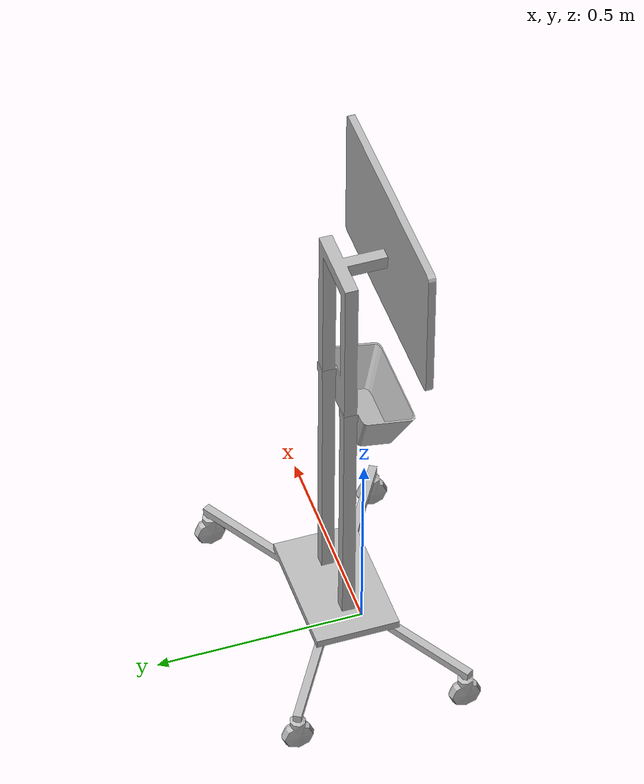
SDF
<?xml version='1.0' encoding='utf-8'?>
<sdf version="1.6">
  <model name="InstrumentCart2">
   <static>true</static>
    <link name="body">
      <pose>0 0 0 0 0 0</pose>

      <visual name="visual">
        <geometry>
          <mesh>
            <uri>model://InstrumentCart2/meshes/InstrumentCart2.obj</uri>
          </mesh>
        </geometry>
      </visual>

      <collision name="collision">
        <geometry>
          <mesh>
            <uri>model://InstrumentCart2/meshes/InstrumentCart2.obj</uri>
          </mesh>
        </geometry>
      </collision>

    </link>
  </model>
</sdf>
